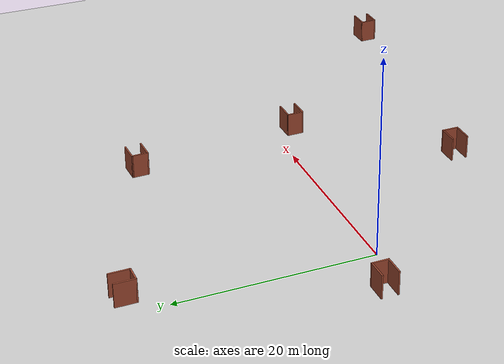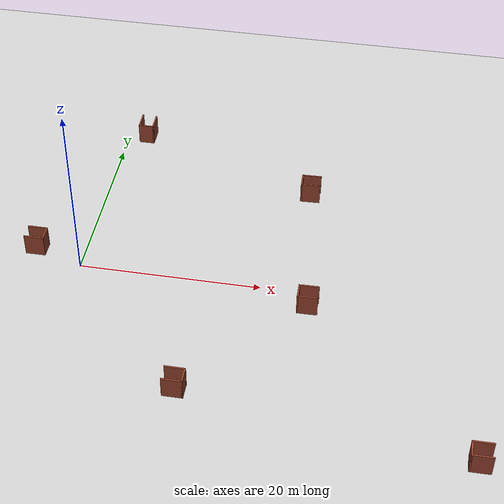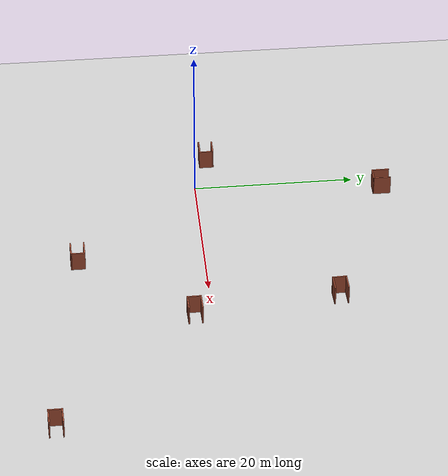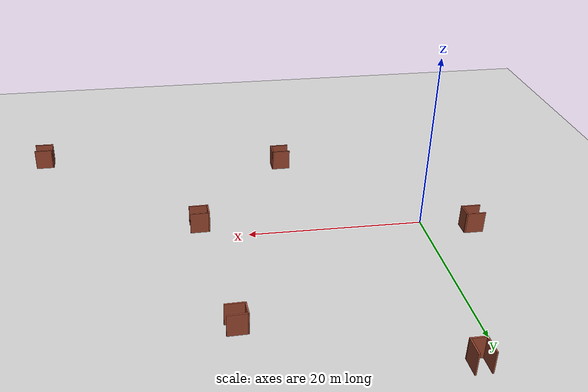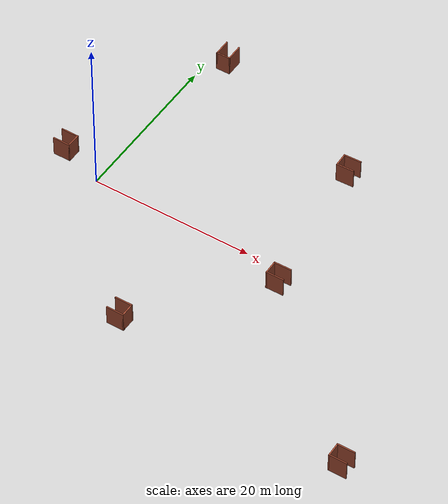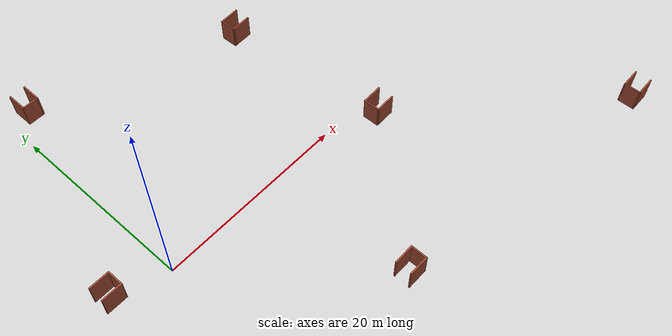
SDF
<sdf version="1.7">
 <world name="default">
  <light name="sun" type="directional">
   <pose>0 0 10 0 -0 0</pose>
   <diffuse>0.8 0.8 0.8 1</diffuse>
   <specular>0.2 0.2 0.2 1</specular>
   <attenuation>
    <range>1000</range>
    <constant>0.9</constant>
    <linear>0.01</linear>
    <quadratic>0.001</quadratic>
   </attenuation>
   <direction>-0.5 0.1 -0.9</direction>
   <spot><inner_angle>0</inner_angle><outer_angle>0</outer_angle><falloff>0</falloff></spot>
  </light>
  <model name="ground_plane">
   <static>1</static>
   <link name="link">
    <collision name="collision">
     <geometry><plane><normal>0 0 1</normal><size>100 100</size></plane></geometry>
     <surface>
      <contact><collide_bitmask>65535</collide_bitmask></contact>
      <friction><ode><mu>100</mu><mu2>50</mu2></ode></friction>
     </surface>
    </collision>
    <visual name="visual">
     <cast_shadows>0</cast_shadows>
     <geometry><plane><normal>0 0 1</normal><size>100 100</size></plane></geometry>
     <material>
      <script><uri>file://media/materials/scripts/gazebo.material</uri><name>Gazebo/Grey</name></script>
     </material>
    </visual>
   </link>
  </model>
  <gravity>0 0 -9.8</gravity>
  <magnetic_field>6e-06 2.3e-05 -4.2e-05</magnetic_field>
  <atmosphere type="adiabatic"/>
  <physics type="ode">
   <max_step_size>0.001</max_step_size>
   <real_time_factor>1</real_time_factor>
   <real_time_update_rate>1000</real_time_update_rate>
  </physics>
  <scene><ambient>0.4 0.4 0.4 1</ambient><background>0.7 0.7 0.7 1</background><shadows>1</shadows></scene>
  <spherical_coordinates>
   <surface_model>EARTH_WGS84</surface_model>
   <latitude_deg>0</latitude_deg>
   <longitude_deg>0</longitude_deg>
   <elevation>0</elevation>
   <heading_deg>0</heading_deg>
  </spherical_coordinates>
  <model name="Fill_palatte">
   <pose>-3.22841 1.37871 0 0 -0 0</pose>
   <link name="Wall_0">
    <collision name="Wall_0_Collision">
     <geometry><box><size>2.2 0.15 2.5</size></box></geometry>
     <pose>0 0 1.25 0 -0 0</pose>
    </collision>
    <visual name="Wall_0_Visual">
     <pose>0 0 1.25 0 -0 0</pose>
     <geometry><box><size>2.2 0.15 2.5</size></box></geometry>
     <material>
      <script><uri>file://media/materials/scripts/gazebo.material</uri><name>Gazebo/Bricks</name></script>
      <ambient>1 1 1 1</ambient>
     </material>
     <meta><layer>0</layer></meta>
    </visual>
    <pose>-2.1295 -0.3455 0 0 -0 0</pose>
   </link>
   <link name="Wall_2">
    <collision name="Wall_2_Collision">
     <geometry><box><size>1.8 0.15 2.5</size></box></geometry>
     <pose>0 0 1.25 0 -0 0</pose>
    </collision>
    <visual name="Wall_2_Visual">
     <pose>0 0 1.25 0 -0 0</pose>
     <geometry><box><size>1.8 0.15 2.5</size></box></geometry>
     <material>
      <script><uri>file://media/materials/scripts/gazebo.material</uri><name>Gazebo/Bricks</name></script>
      <ambient>1 1 1 1</ambient>
     </material>
     <meta><layer>0</layer></meta>
    </visual>
    <pose>-1.1045 0.4795 0 0 -0 1.5708</pose>
   </link>
   <link name="Wall_4">
    <collision name="Wall_4_Collision">
     <geometry><box><size>2.2 0.15 2.5</size></box></geometry>
     <pose>0 0 1.25 0 -0 0</pose>
    </collision>
    <visual name="Wall_4_Visual">
     <pose>0 0 1.25 0 -0 0</pose>
     <geometry><box><size>2.2 0.15 2.5</size></box></geometry>
     <material>
      <script><uri>file://media/materials/scripts/gazebo.material</uri><name>Gazebo/Bricks</name></script>
      <ambient>1 1 1 1</ambient>
     </material>
     <meta><layer>0</layer></meta>
    </visual>
    <pose>-2.1295 1.3045 0 0 -0 3.14159</pose>
   </link>
   <static>1</static>
  </model>
  <model name="Fill_palatte_0">
   <pose>15.9449 -16.0907 0 0 -0 0</pose>
   <link name="Wall_0">
    <collision name="Wall_0_Collision">
     <geometry><box><size>2.2 0.15 2.5</size></box></geometry>
     <pose>0 0 1.25 0 -0 0</pose>
    </collision>
    <visual name="Wall_0_Visual">
     <pose>0 0 1.25 0 -0 0</pose>
     <geometry><box><size>2.2 0.15 2.5</size></box></geometry>
     <material>
      <script><uri>file://media/materials/scripts/gazebo.material</uri><name>Gazebo/Bricks</name></script>
      <ambient>1 1 1 1</ambient>
     </material>
     <meta><layer>0</layer></meta>
    </visual>
    <pose>-2.1295 -0.3455 0 0 -0 0</pose>
   </link>
   <link name="Wall_2">
    <collision name="Wall_2_Collision">
     <geometry><box><size>1.8 0.15 2.5</size></box></geometry>
     <pose>0 0 1.25 0 -0 0</pose>
    </collision>
    <visual name="Wall_2_Visual">
     <pose>0 0 1.25 0 -0 0</pose>
     <geometry><box><size>1.8 0.15 2.5</size></box></geometry>
     <material>
      <script><uri>file://media/materials/scripts/gazebo.material</uri><name>Gazebo/Bricks</name></script>
      <ambient>1 1 1 1</ambient>
     </material>
     <meta><layer>0</layer></meta>
    </visual>
    <pose>-1.1045 0.4795 0 0 -0 1.5708</pose>
   </link>
   <link name="Wall_4">
    <collision name="Wall_4_Collision">
     <geometry><box><size>2.2 0.15 2.5</size></box></geometry>
     <pose>0 0 1.25 0 -0 0</pose>
    </collision>
    <visual name="Wall_4_Visual">
     <pose>0 0 1.25 0 -0 0</pose>
     <geometry><box><size>2.2 0.15 2.5</size></box></geometry>
     <material>
      <script><uri>file://media/materials/scripts/gazebo.material</uri><name>Gazebo/Bricks</name></script>
      <ambient>1 1 1 1</ambient>
     </material>
     <meta><layer>0</layer></meta>
    </visual>
    <pose>-2.1295 1.3045 0 0 -0 3.14159</pose>
   </link>
   <static>1</static>
  </model>
  <model name="Fill_palatte_1">
   <pose>1.83761 21.3828 0 0 0 -1.56357</pose>
   <link name="Wall_0">
    <collision name="Wall_0_Collision">
     <geometry><box><size>2.2 0.15 2.5</size></box></geometry>
     <pose>0 0 1.25 0 -0 0</pose>
    </collision>
    <visual name="Wall_0_Visual">
     <pose>0 0 1.25 0 -0 0</pose>
     <geometry><box><size>2.2 0.15 2.5</size></box></geometry>
     <material>
      <script><uri>file://media/materials/scripts/gazebo.material</uri><name>Gazebo/Bricks</name></script>
      <ambient>1 1 1 1</ambient>
     </material>
     <meta><layer>0</layer></meta>
    </visual>
    <pose>-2.1295 -0.3455 0 0 -0 0</pose>
   </link>
   <link name="Wall_2">
    <collision name="Wall_2_Collision">
     <geometry><box><size>1.8 0.15 2.5</size></box></geometry>
     <pose>0 0 1.25 0 -0 0</pose>
    </collision>
    <visual name="Wall_2_Visual">
     <pose>0 0 1.25 0 -0 0</pose>
     <geometry><box><size>1.8 0.15 2.5</size></box></geometry>
     <material>
      <script><uri>file://media/materials/scripts/gazebo.material</uri><name>Gazebo/Bricks</name></script>
      <ambient>1 1 1 1</ambient>
     </material>
     <meta><layer>0</layer></meta>
    </visual>
    <pose>-1.1045 0.4795 0 0 -0 1.5708</pose>
   </link>
   <link name="Wall_4">
    <collision name="Wall_4_Collision">
     <geometry><box><size>2.2 0.15 2.5</size></box></geometry>
     <pose>0 0 1.25 0 -0 0</pose>
    </collision>
    <visual name="Wall_4_Visual">
     <pose>0 0 1.25 0 -0 0</pose>
     <geometry><box><size>2.2 0.15 2.5</size></box></geometry>
     <material>
      <script><uri>file://media/materials/scripts/gazebo.material</uri><name>Gazebo/Bricks</name></script>
      <ambient>1 1 1 1</ambient>
     </material>
     <meta><layer>0</layer></meta>
    </visual>
    <pose>-2.1295 1.3045 0 0 -0 3.14159</pose>
   </link>
   <static>1</static>
  </model>
  <model name="Fill_palatte_2">
   <pose>21.1617 16.1539 0 0 0 -3.10725</pose>
   <link name="Wall_0">
    <collision name="Wall_0_Collision">
     <geometry><box><size>2.2 0.15 2.5</size></box></geometry>
     <pose>0 0 1.25 0 -0 0</pose>
    </collision>
    <visual name="Wall_0_Visual">
     <pose>0 0 1.25 0 -0 0</pose>
     <geometry><box><size>2.2 0.15 2.5</size></box></geometry>
     <material>
      <script><uri>file://media/materials/scripts/gazebo.material</uri><name>Gazebo/Bricks</name></script>
      <ambient>1 1 1 1</ambient>
     </material>
     <meta><layer>0</layer></meta>
    </visual>
    <pose>-2.1295 -0.3455 0 0 -0 0</pose>
   </link>
   <link name="Wall_2">
    <collision name="Wall_2_Collision">
     <geometry><box><size>1.8 0.15 2.5</size></box></geometry>
     <pose>0 0 1.25 0 -0 0</pose>
    </collision>
    <visual name="Wall_2_Visual">
     <pose>0 0 1.25 0 -0 0</pose>
     <geometry><box><size>1.8 0.15 2.5</size></box></geometry>
     <material>
      <script><uri>file://media/materials/scripts/gazebo.material</uri><name>Gazebo/Bricks</name></script>
      <ambient>1 1 1 1</ambient>
     </material>
     <meta><layer>0</layer></meta>
    </visual>
    <pose>-1.1045 0.4795 0 0 -0 1.5708</pose>
   </link>
   <link name="Wall_4">
    <collision name="Wall_4_Collision">
     <geometry><box><size>2.2 0.15 2.5</size></box></geometry>
     <pose>0 0 1.25 0 -0 0</pose>
    </collision>
    <visual name="Wall_4_Visual">
     <pose>0 0 1.25 0 -0 0</pose>
     <geometry><box><size>2.2 0.15 2.5</size></box></geometry>
     <material>
      <script><uri>file://media/materials/scripts/gazebo.material</uri><name>Gazebo/Bricks</name></script>
      <ambient>1 1 1 1</ambient>
     </material>
     <meta><layer>0</layer></meta>
    </visual>
    <pose>-2.1295 1.3045 0 0 -0 3.14159</pose>
   </link>
   <static>1</static>
  </model>
  <model name="Fill_palatte_3">
   <pose>23.2144 -1.67525 0 0 0 -3.12145</pose>
   <link name="Wall_0">
    <collision name="Wall_0_Collision">
     <geometry><box><size>2.2 0.15 2.5</size></box></geometry>
     <pose>0 0 1.25 0 -0 0</pose>
    </collision>
    <visual name="Wall_0_Visual">
     <pose>0 0 1.25 0 -0 0</pose>
     <geometry><box><size>2.2 0.15 2.5</size></box></geometry>
     <material>
      <script><uri>file://media/materials/scripts/gazebo.material</uri><name>Gazebo/Bricks</name></script>
      <ambient>1 1 1 1</ambient>
     </material>
     <meta><layer>0</layer></meta>
    </visual>
    <pose>-2.1295 -0.3455 0 0 -0 0</pose>
   </link>
   <link name="Wall_2">
    <collision name="Wall_2_Collision">
     <geometry><box><size>1.8 0.15 2.5</size></box></geometry>
     <pose>0 0 1.25 0 -0 0</pose>
    </collision>
    <visual name="Wall_2_Visual">
     <pose>0 0 1.25 0 -0 0</pose>
     <geometry><box><size>1.8 0.15 2.5</size></box></geometry>
     <material>
      <script><uri>file://media/materials/scripts/gazebo.material</uri><name>Gazebo/Bricks</name></script>
      <ambient>1 1 1 1</ambient>
     </material>
     <meta><layer>0</layer></meta>
    </visual>
    <pose>-1.1045 0.4795 0 0 -0 1.5708</pose>
   </link>
   <link name="Wall_4">
    <collision name="Wall_4_Collision">
     <geometry><box><size>2.2 0.15 2.5</size></box></geometry>
     <pose>0 0 1.25 0 -0 0</pose>
    </collision>
    <visual name="Wall_4_Visual">
     <pose>0 0 1.25 0 -0 0</pose>
     <geometry><box><size>2.2 0.15 2.5</size></box></geometry>
     <material>
      <script><uri>file://media/materials/scripts/gazebo.material</uri><name>Gazebo/Bricks</name></script>
      <ambient>1 1 1 1</ambient>
     </material>
     <meta><layer>0</layer></meta>
    </visual>
    <pose>-2.1295 1.3045 0 0 -0 3.14159</pose>
   </link>
   <static>1</static>
  </model>
  <model name="Fill_palatte_4">
   <pose>41.9247 -19.2353 0 0 0 -3.13173</pose>
   <link name="Wall_0">
    <collision name="Wall_0_Collision">
     <geometry><box><size>2.2 0.15 2.5</size></box></geometry>
     <pose>0 0 1.25 0 -0 0</pose>
    </collision>
    <visual name="Wall_0_Visual">
     <pose>0 0 1.25 0 -0 0</pose>
     <geometry><box><size>2.2 0.15 2.5</size></box></geometry>
     <material>
      <script><uri>file://media/materials/scripts/gazebo.material</uri><name>Gazebo/Bricks</name></script>
      <ambient>1 1 1 1</ambient>
     </material>
     <meta><layer>0</layer></meta>
    </visual>
    <pose>-2.1295 -0.3455 0 0 -0 0</pose>
   </link>
   <link name="Wall_2">
    <collision name="Wall_2_Collision">
     <geometry><box><size>1.8 0.15 2.5</size></box></geometry>
     <pose>0 0 1.25 0 -0 0</pose>
    </collision>
    <visual name="Wall_2_Visual">
     <pose>0 0 1.25 0 -0 0</pose>
     <geometry><box><size>1.8 0.15 2.5</size></box></geometry>
     <material>
      <script><uri>file://media/materials/scripts/gazebo.material</uri><name>Gazebo/Bricks</name></script>
      <ambient>1 1 1 1</ambient>
     </material>
     <meta><layer>0</layer></meta>
    </visual>
    <pose>-1.1045 0.4795 0 0 -0 1.5708</pose>
   </link>
   <link name="Wall_4">
    <collision name="Wall_4_Collision">
     <geometry><box><size>2.2 0.15 2.5</size></box></geometry>
     <pose>0 0 1.25 0 -0 0</pose>
    </collision>
    <visual name="Wall_4_Visual">
     <pose>0 0 1.25 0 -0 0</pose>
     <geometry><box><size>2.2 0.15 2.5</size></box></geometry>
     <material>
      <script><uri>file://media/materials/scripts/gazebo.material</uri><name>Gazebo/Bricks</name></script>
      <ambient>1 1 1 1</ambient>
     </material>
     <meta><layer>0</layer></meta>
    </visual>
    <pose>-2.1295 1.3045 0 0 -0 3.14159</pose>
   </link>
   <static>1</static>
  </model>
 </world>
</sdf>
